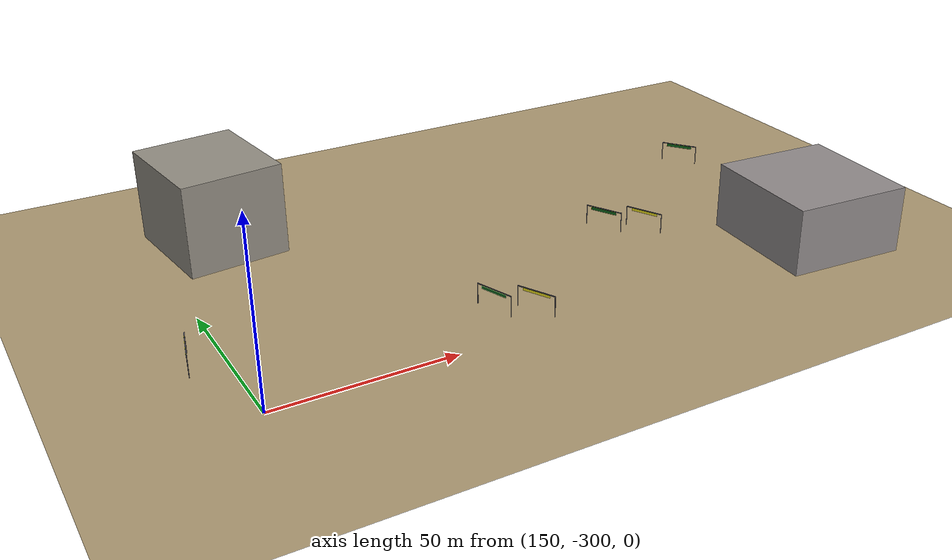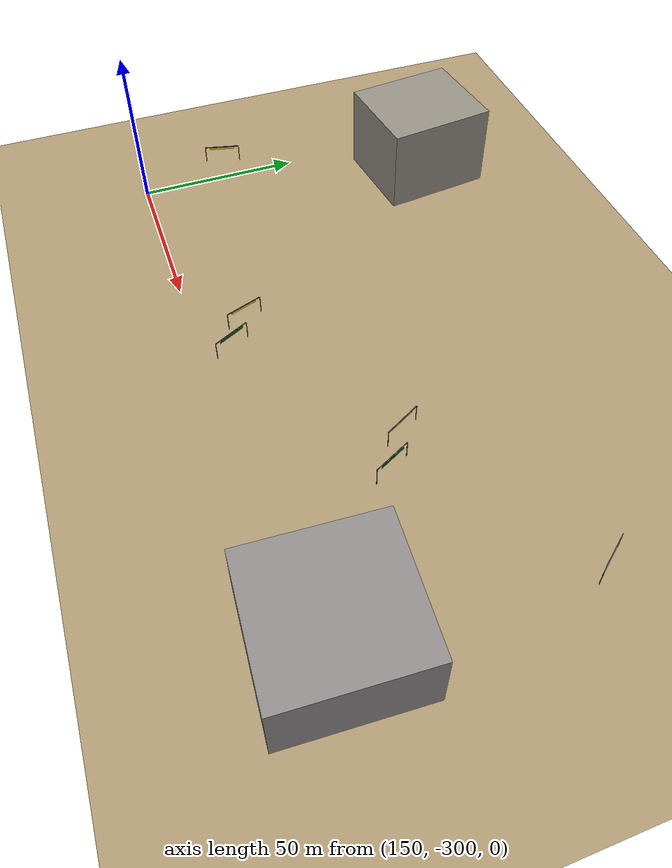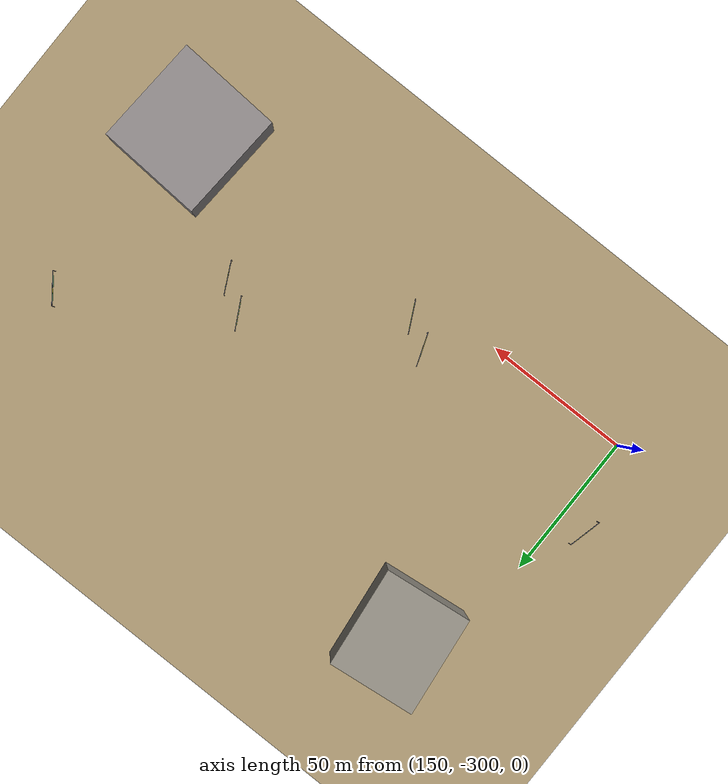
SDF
<sdf version="1.9">
 <world name="crossroad_world">
  <model name="ground_plane">
   <static>true</static>
   <pose>0 0 -0.05 0 0 0</pose>
   <link name="link">
    <collision name="collision">
     <geometry><plane><normal>0 0 1</normal><size>10000 10000</size></plane></geometry>
    </collision>
    <visual name="visual">
     <geometry><plane><normal>0 0 1</normal><size>15000 15000</size></plane></geometry>
     <material><ambient>0.68 0.60 0.45 1</ambient><diffuse>0.68 0.60 0.45 1</diffuse></material>
    </visual>
   </link>
  </model>
  <model name="gantry_2">
   <static>true</static>
   <pose>141.179 -271.351 0 0 0 4.473</pose>
   <link name="link">
    <visual name="post_l">
     <pose>-5.700 0 2.925 0 0 0</pose>
     <geometry><cylinder><radius>0.1</radius><length>5.85</length></cylinder></geometry>
     <material><ambient>0.30 0.30 0.35 1</ambient><diffuse>0.30 0.30 0.35 1</diffuse></material>
    </visual>
    <visual name="post_r">
     <pose>5.700 0 2.925 0 0 0</pose>
     <geometry><cylinder><radius>0.1</radius><length>5.85</length></cylinder></geometry>
     <material><ambient>0.30 0.30 0.35 1</ambient><diffuse>0.30 0.30 0.35 1</diffuse></material>
    </visual>
    <visual name="beam">
     <pose>0 0 6.000 0 0 0</pose>
     <geometry><box><size>11.400 0.22 0.22</size></box></geometry>
     <material><ambient>0.30 0.30 0.35 1</ambient><diffuse>0.30 0.30 0.35 1</diffuse></material>
    </visual>
    <visual name="sign_border">
     <pose>0 -0.14 5.450 0 0 0</pose>
     <geometry><box><size>8.288 0.04 0.92</size></box></geometry>
     <material><ambient>0.90 0.85 0.10 1</ambient><diffuse>0.90 0.85 0.10 1</diffuse></material>
    </visual>
    <visual name="sign_panel">
     <pose>0 -0.15 5.450 0 0 0</pose>
     <geometry><box><size>8.208 0.05 0.86</size></box></geometry>
     <material><ambient>0.05 0.38 0.10 1</ambient><diffuse>0.05 0.38 0.10 1</diffuse></material>
    </visual>
    <collision name="col_post_l">
     <pose>-5.700 0 2.925 0 0 0</pose>
     <geometry><cylinder><radius>0.1</radius><length>5.85</length></cylinder></geometry>
    </collision>
    <collision name="col_post_r">
     <pose>5.700 0 2.925 0 0 0</pose>
     <geometry><cylinder><radius>0.1</radius><length>5.85</length></cylinder></geometry>
    </collision>
    <collision name="col_beam">
     <pose>0 0 6.000 0 0 0</pose>
     <geometry><box><size>11.400 0.22 0.22</size></box></geometry>
    </collision>
   </link>
  </model>
  <model name="gantry_35">
   <static>true</static>
   <pose>280.932 -263.938 0 0 0 2.037</pose>
   <link name="link">
    <visual name="post_l">
     <pose>-5.700 0 2.925 0 0 0</pose>
     <geometry><cylinder><radius>0.1</radius><length>5.85</length></cylinder></geometry>
     <material><ambient>0.30 0.30 0.35 1</ambient><diffuse>0.30 0.30 0.35 1</diffuse></material>
    </visual>
    <visual name="post_r">
     <pose>5.700 0 2.925 0 0 0</pose>
     <geometry><cylinder><radius>0.1</radius><length>5.85</length></cylinder></geometry>
     <material><ambient>0.30 0.30 0.35 1</ambient><diffuse>0.30 0.30 0.35 1</diffuse></material>
    </visual>
    <visual name="beam">
     <pose>0 0 6.000 0 0 0</pose>
     <geometry><box><size>11.400 0.22 0.22</size></box></geometry>
     <material><ambient>0.30 0.30 0.35 1</ambient><diffuse>0.30 0.30 0.35 1</diffuse></material>
    </visual>
    <visual name="sign_border">
     <pose>0 -0.14 5.450 0 0 0</pose>
     <geometry><box><size>8.288 0.04 0.92</size></box></geometry>
     <material><ambient>0.90 0.85 0.10 1</ambient><diffuse>0.90 0.85 0.10 1</diffuse></material>
    </visual>
    <visual name="sign_panel">
     <pose>0 -0.15 5.450 0 0 0</pose>
     <geometry><box><size>8.208 0.05 0.86</size></box></geometry>
     <material><ambient>0.05 0.38 0.10 1</ambient><diffuse>0.05 0.38 0.10 1</diffuse></material>
    </visual>
    <collision name="col_post_l">
     <pose>-5.700 0 2.925 0 0 0</pose>
     <geometry><cylinder><radius>0.1</radius><length>5.85</length></cylinder></geometry>
    </collision>
    <collision name="col_post_r">
     <pose>5.700 0 2.925 0 0 0</pose>
     <geometry><cylinder><radius>0.1</radius><length>5.85</length></cylinder></geometry>
    </collision>
    <collision name="col_beam">
     <pose>0 0 6.000 0 0 0</pose>
     <geometry><box><size>11.400 0.22 0.22</size></box></geometry>
    </collision>
   </link>
  </model>
  <model name="gantry_37">
   <static>true</static>
   <pose>227.340 -290.916 0 0 0 2.037</pose>
   <link name="link">
    <visual name="post_l">
     <pose>-5.700 0 2.925 0 0 0</pose>
     <geometry><cylinder><radius>0.1</radius><length>5.85</length></cylinder></geometry>
     <material><ambient>0.30 0.30 0.35 1</ambient><diffuse>0.30 0.30 0.35 1</diffuse></material>
    </visual>
    <visual name="post_r">
     <pose>5.700 0 2.925 0 0 0</pose>
     <geometry><cylinder><radius>0.1</radius><length>5.85</length></cylinder></geometry>
     <material><ambient>0.30 0.30 0.35 1</ambient><diffuse>0.30 0.30 0.35 1</diffuse></material>
    </visual>
    <visual name="beam">
     <pose>0 0 6.000 0 0 0</pose>
     <geometry><box><size>11.400 0.22 0.22</size></box></geometry>
     <material><ambient>0.30 0.30 0.35 1</ambient><diffuse>0.30 0.30 0.35 1</diffuse></material>
    </visual>
    <visual name="sign_border">
     <pose>0 -0.14 5.450 0 0 0</pose>
     <geometry><box><size>8.288 0.04 0.92</size></box></geometry>
     <material><ambient>0.90 0.85 0.10 1</ambient><diffuse>0.90 0.85 0.10 1</diffuse></material>
    </visual>
    <visual name="sign_panel">
     <pose>0 -0.15 5.450 0 0 0</pose>
     <geometry><box><size>8.208 0.05 0.86</size></box></geometry>
     <material><ambient>0.05 0.38 0.10 1</ambient><diffuse>0.05 0.38 0.10 1</diffuse></material>
    </visual>
    <collision name="col_post_l">
     <pose>-5.700 0 2.925 0 0 0</pose>
     <geometry><cylinder><radius>0.1</radius><length>5.85</length></cylinder></geometry>
    </collision>
    <collision name="col_post_r">
     <pose>5.700 0 2.925 0 0 0</pose>
     <geometry><cylinder><radius>0.1</radius><length>5.85</length></cylinder></geometry>
    </collision>
    <collision name="col_beam">
     <pose>0 0 6.000 0 0 0</pose>
     <geometry><box><size>11.400 0.22 0.22</size></box></geometry>
    </collision>
   </link>
  </model>
  <model name="gantry_121">
   <static>true</static>
   <pose>271.255 -257.182 0 0 0 -1.079</pose>
   <link name="link">
    <visual name="post_l">
     <pose>-5.700 0 2.925 0 0 0</pose>
     <geometry><cylinder><radius>0.1</radius><length>5.85</length></cylinder></geometry>
     <material><ambient>0.30 0.30 0.35 1</ambient><diffuse>0.30 0.30 0.35 1</diffuse></material>
    </visual>
    <visual name="post_r">
     <pose>5.700 0 2.925 0 0 0</pose>
     <geometry><cylinder><radius>0.1</radius><length>5.85</length></cylinder></geometry>
     <material><ambient>0.30 0.30 0.35 1</ambient><diffuse>0.30 0.30 0.35 1</diffuse></material>
    </visual>
    <visual name="beam">
     <pose>0 0 6.000 0 0 0</pose>
     <geometry><box><size>11.400 0.22 0.22</size></box></geometry>
     <material><ambient>0.30 0.30 0.35 1</ambient><diffuse>0.30 0.30 0.35 1</diffuse></material>
    </visual>
    <visual name="sign_border">
     <pose>0 -0.14 5.450 0 0 0</pose>
     <geometry><box><size>8.288 0.04 0.92</size></box></geometry>
     <material><ambient>0.90 0.85 0.10 1</ambient><diffuse>0.90 0.85 0.10 1</diffuse></material>
    </visual>
    <visual name="sign_panel">
     <pose>0 -0.15 5.450 0 0 0</pose>
     <geometry><box><size>8.208 0.05 0.86</size></box></geometry>
     <material><ambient>0.05 0.38 0.10 1</ambient><diffuse>0.05 0.38 0.10 1</diffuse></material>
    </visual>
    <collision name="col_post_l">
     <pose>-5.700 0 2.925 0 0 0</pose>
     <geometry><cylinder><radius>0.1</radius><length>5.85</length></cylinder></geometry>
    </collision>
    <collision name="col_post_r">
     <pose>5.700 0 2.925 0 0 0</pose>
     <geometry><cylinder><radius>0.1</radius><length>5.85</length></cylinder></geometry>
    </collision>
    <collision name="col_beam">
     <pose>0 0 6.000 0 0 0</pose>
     <geometry><box><size>11.400 0.22 0.22</size></box></geometry>
    </collision>
   </link>
  </model>
  <model name="gantry_122">
   <static>true</static>
   <pose>218.267 -284.765 0 0 0 -1.226</pose>
   <link name="link">
    <visual name="post_l">
     <pose>-5.700 0 2.925 0 0 0</pose>
     <geometry><cylinder><radius>0.1</radius><length>5.85</length></cylinder></geometry>
     <material><ambient>0.30 0.30 0.35 1</ambient><diffuse>0.30 0.30 0.35 1</diffuse></material>
    </visual>
    <visual name="post_r">
     <pose>5.700 0 2.925 0 0 0</pose>
     <geometry><cylinder><radius>0.1</radius><length>5.85</length></cylinder></geometry>
     <material><ambient>0.30 0.30 0.35 1</ambient><diffuse>0.30 0.30 0.35 1</diffuse></material>
    </visual>
    <visual name="beam">
     <pose>0 0 6.000 0 0 0</pose>
     <geometry><box><size>11.400 0.22 0.22</size></box></geometry>
     <material><ambient>0.30 0.30 0.35 1</ambient><diffuse>0.30 0.30 0.35 1</diffuse></material>
    </visual>
    <visual name="sign_border">
     <pose>0 -0.14 5.450 0 0 0</pose>
     <geometry><box><size>8.288 0.04 0.92</size></box></geometry>
     <material><ambient>0.90 0.85 0.10 1</ambient><diffuse>0.90 0.85 0.10 1</diffuse></material>
    </visual>
    <visual name="sign_panel">
     <pose>0 -0.15 5.450 0 0 0</pose>
     <geometry><box><size>8.208 0.05 0.86</size></box></geometry>
     <material><ambient>0.05 0.38 0.10 1</ambient><diffuse>0.05 0.38 0.10 1</diffuse></material>
    </visual>
    <collision name="col_post_l">
     <pose>-5.700 0 2.925 0 0 0</pose>
     <geometry><cylinder><radius>0.1</radius><length>5.85</length></cylinder></geometry>
    </collision>
    <collision name="col_post_r">
     <pose>5.700 0 2.925 0 0 0</pose>
     <geometry><cylinder><radius>0.1</radius><length>5.85</length></cylinder></geometry>
    </collision>
    <collision name="col_beam">
     <pose>0 0 6.000 0 0 0</pose>
     <geometry><box><size>11.400 0.22 0.22</size></box></geometry>
    </collision>
   </link>
  </model>
  <model name="gantry_123">
   <static>true</static>
   <pose>322.412 -226.463 0 0 0 -0.928</pose>
   <link name="link">
    <visual name="post_l">
     <pose>-5.700 0 2.925 0 0 0</pose>
     <geometry><cylinder><radius>0.1</radius><length>5.85</length></cylinder></geometry>
     <material><ambient>0.30 0.30 0.35 1</ambient><diffuse>0.30 0.30 0.35 1</diffuse></material>
    </visual>
    <visual name="post_r">
     <pose>5.700 0 2.925 0 0 0</pose>
     <geometry><cylinder><radius>0.1</radius><length>5.85</length></cylinder></geometry>
     <material><ambient>0.30 0.30 0.35 1</ambient><diffuse>0.30 0.30 0.35 1</diffuse></material>
    </visual>
    <visual name="beam">
     <pose>0 0 6.000 0 0 0</pose>
     <geometry><box><size>11.400 0.22 0.22</size></box></geometry>
     <material><ambient>0.30 0.30 0.35 1</ambient><diffuse>0.30 0.30 0.35 1</diffuse></material>
    </visual>
    <visual name="sign_border">
     <pose>0 -0.14 5.450 0 0 0</pose>
     <geometry><box><size>8.288 0.04 0.92</size></box></geometry>
     <material><ambient>0.90 0.85 0.10 1</ambient><diffuse>0.90 0.85 0.10 1</diffuse></material>
    </visual>
    <visual name="sign_panel">
     <pose>0 -0.15 5.450 0 0 0</pose>
     <geometry><box><size>8.208 0.05 0.86</size></box></geometry>
     <material><ambient>0.05 0.38 0.10 1</ambient><diffuse>0.05 0.38 0.10 1</diffuse></material>
    </visual>
    <collision name="col_post_l">
     <pose>-5.700 0 2.925 0 0 0</pose>
     <geometry><cylinder><radius>0.1</radius><length>5.85</length></cylinder></geometry>
    </collision>
    <collision name="col_post_r">
     <pose>5.700 0 2.925 0 0 0</pose>
     <geometry><cylinder><radius>0.1</radius><length>5.85</length></cylinder></geometry>
    </collision>
    <collision name="col_beam">
     <pose>0 0 6.000 0 0 0</pose>
     <geometry><box><size>11.400 0.22 0.22</size></box></geometry>
    </collision>
   </link>
  </model>
  <model name="building_518">
   <static>true</static>
   <pose>168.073 -209.291 13.420 0 0 0.118</pose>
   <link name="link">
    <visual name="body">
     <geometry><box><size>29.49 33.90 26.84</size></box></geometry>
     <material><ambient>0.58 0.56 0.52 1</ambient><diffuse>0.58 0.56 0.52 1</diffuse></material>
    </visual>
    <collision name="col"><geometry><box><size>29.49 33.90 26.84</size></box></geometry></collision>
   </link>
  </model>
  <model name="building_618">
   <static>true</static>
   <pose>318.332 -292.543 9.812 0 0 -0.062</pose>
   <link name="link">
    <visual name="body">
     <geometry><box><size>36.01 37.51 19.62</size></box></geometry>
     <material><ambient>0.57 0.55 0.55 1</ambient><diffuse>0.57 0.55 0.55 1</diffuse></material>
    </visual>
    <collision name="col"><geometry><box><size>36.01 37.51 19.62</size></box></geometry></collision>
   </link>
  </model>
 </world>
</sdf>
